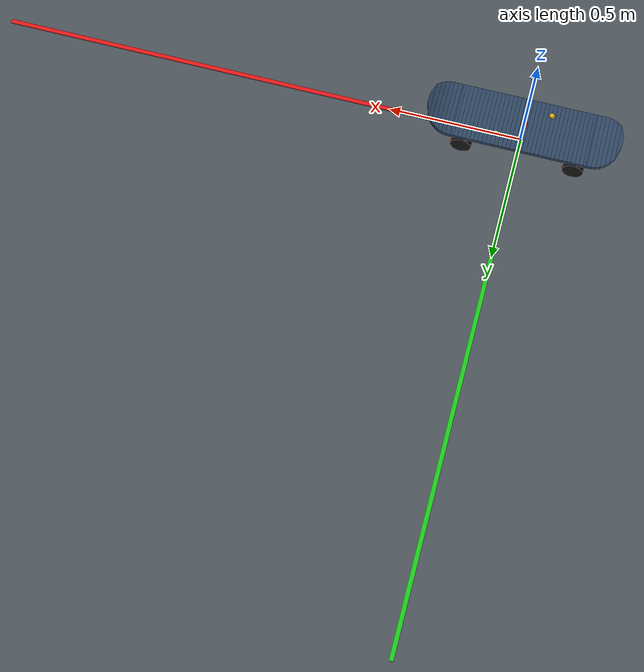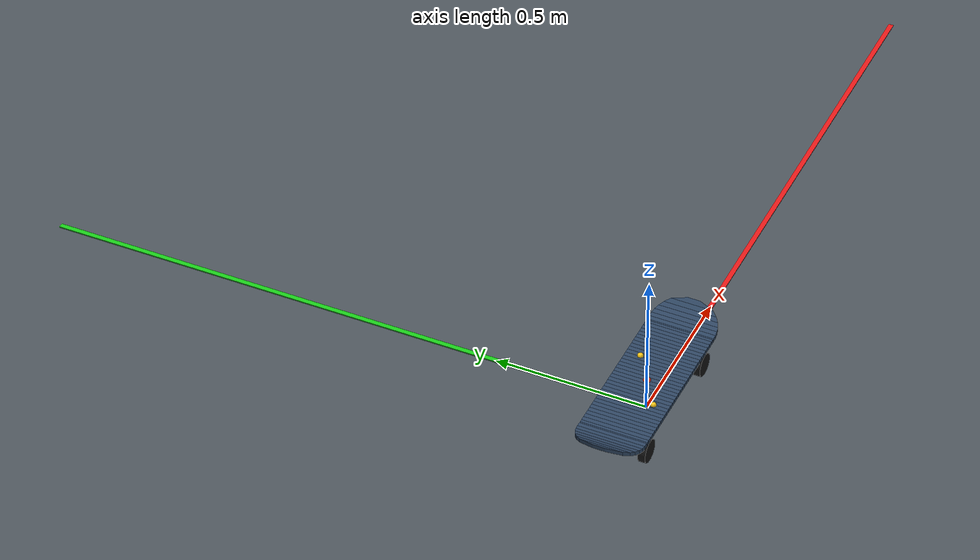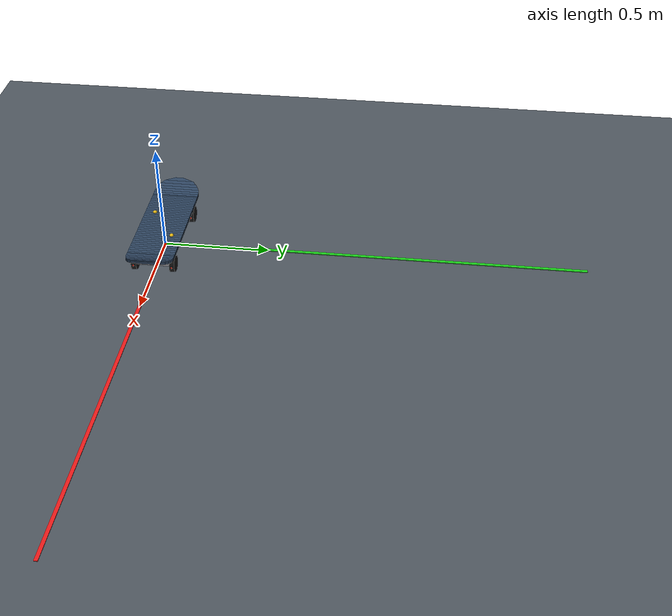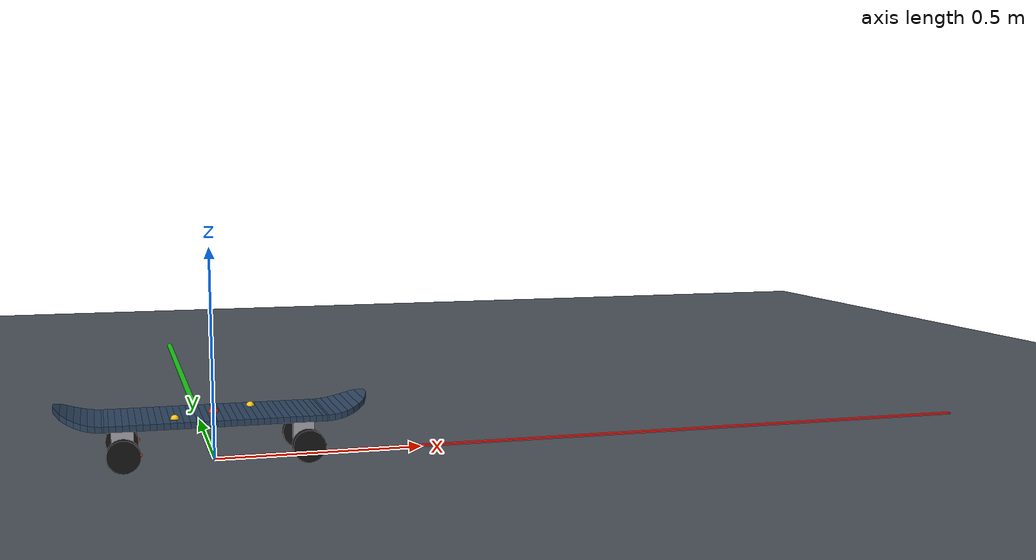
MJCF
<mujoco model="skate-sim-board-cruiser-truck">
      <compiler angle="radian" coordinate="local"/>
      <option gravity="0 0 -9.81" integrator="implicitfast" timestep=".002"/>
      <visual><headlight diffuse=".8 .8 .8" ambient=".35 .35 .35"/></visual>
      <asset>
        <mesh name="deck_strip_0" vertex="-0.36 -0.0200000023 0.028 -0.36 -0.0200000023 0.042 -0.36 0.0200000023 0.028 -0.36 0.0200000023 0.042 -0.345 -0.0697493719 0.0191053719 -0.345 -0.0697493719 0.0331053719 -0.345 0.0697493719 0.0191053719 -0.345 0.0697493719 0.0331053719"/><mesh name="deck_strip_1" vertex="-0.345 -0.0697493719 0.0191053719 -0.345 -0.0697493719 0.0331053719 -0.345 0.0697493719 0.0191053719 -0.345 0.0697493719 0.0331053719 -0.33 -0.0870820393 0.0115123967 -0.33 -0.0870820393 0.0255123967 -0.33 0.0870820393 0.0115123967 -0.33 0.0870820393 0.0255123967"/><mesh name="deck_strip_2" vertex="-0.33 -0.0870820393 0.0115123967 -0.33 -0.0870820393 0.0255123967 -0.33 0.0870820393 0.0115123967 -0.33 0.0870820393 0.0255123967 -0.315 -0.0979422863 0.00522107438 -0.315 -0.0979422863 0.0192210744 -0.315 0.0979422863 0.00522107438 -0.315 0.0979422863 0.0192210744"/><mesh name="deck_strip_3" vertex="-0.315 -0.0979422863 0.00522107438 -0.315 -0.0979422863 0.0192210744 -0.315 0.0979422863 0.00522107438 -0.315 0.0979422863 0.0192210744 -0.3 -0.104852814 0.000231404959 -0.3 -0.104852814 0.014231405 -0.3 0.104852814 0.000231404959 -0.3 0.104852814 0.014231405"/><mesh name="deck_strip_4" vertex="-0.3 -0.104852814 0.000231404959 -0.3 -0.104852814 0.014231405 -0.3 0.104852814 0.000231404959 -0.3 0.104852814 0.014231405 -0.285 -0.108741197 -0.00345661157 -0.285 -0.108741197 0.0105433884 -0.285 0.108741197 -0.00345661157 -0.285 0.108741197 0.0105433884"/><mesh name="deck_strip_5" vertex="-0.285 -0.108741197 -0.00345661157 -0.285 -0.108741197 0.0105433884 -0.285 0.108741197 -0.00345661157 -0.285 0.108741197 0.0105433884 -0.27 -0.11 -0.00584297521 -0.27 -0.11 0.00815702479 -0.27 0.11 -0.00584297521 -0.27 0.11 0.00815702479"/><mesh name="deck_strip_6" vertex="-0.27 -0.11 -0.00584297521 -0.27 -0.11 0.00815702479 -0.27 0.11 -0.00584297521 -0.27 0.11 0.00815702479 -0.255 -0.11 -0.00692768595 -0.255 -0.11 0.00707231405 -0.255 0.11 -0.00692768595 -0.255 0.11 0.00707231405"/><mesh name="deck_strip_7" vertex="-0.255 -0.11 -0.00692768595 -0.255 -0.11 0.00707231405 -0.255 0.11 -0.00692768595 -0.255 0.11 0.00707231405 -0.25 -0.11 -0.007 -0.25 -0.11 0.007 -0.25 0.11 -0.007 -0.25 0.11 0.007"/><mesh name="deck_strip_8" vertex="-0.25 -0.11 -0.007 -0.25 -0.11 0.007 -0.25 0.11 -0.007 -0.25 0.11 0.007 -0.24 -0.11 -0.007 -0.24 -0.11 0.007 -0.24 0.11 -0.007 -0.24 0.11 0.007"/><mesh name="deck_strip_9" vertex="-0.24 -0.11 -0.007 -0.24 -0.11 0.007 -0.24 0.11 -0.007 -0.24 0.11 0.007 -0.225 -0.11 -0.007 -0.225 -0.11 0.007 -0.225 0.11 -0.007 -0.225 0.11 0.007"/><mesh name="deck_strip_10" vertex="-0.225 -0.11 -0.007 -0.225 -0.11 0.007 -0.225 0.11 -0.007 -0.225 0.11 0.007 -0.21 -0.11 -0.007 -0.21 -0.11 0.007 -0.21 0.11 -0.007 -0.21 0.11 0.007"/><mesh name="deck_strip_11" vertex="-0.21 -0.11 -0.007 -0.21 -0.11 0.007 -0.21 0.11 -0.007 -0.21 0.11 0.007 -0.195 -0.11 -0.007 -0.195 -0.11 0.007 -0.195 0.11 -0.007 -0.195 0.11 0.007"/><mesh name="deck_strip_12" vertex="-0.195 -0.11 -0.007 -0.195 -0.11 0.007 -0.195 0.11 -0.007 -0.195 0.11 0.007 -0.18 -0.11 -0.007 -0.18 -0.11 0.007 -0.18 0.11 -0.007 -0.18 0.11 0.007"/><mesh name="deck_strip_13" vertex="-0.18 -0.11 -0.007 -0.18 -0.11 0.007 -0.18 0.11 -0.007 -0.18 0.11 0.007 -0.165 -0.11 -0.007 -0.165 -0.11 0.007 -0.165 0.11 -0.007 -0.165 0.11 0.007"/><mesh name="deck_strip_14" vertex="-0.165 -0.11 -0.007 -0.165 -0.11 0.007 -0.165 0.11 -0.007 -0.165 0.11 0.007 -0.15 -0.11 -0.007 -0.15 -0.11 0.007 -0.15 0.11 -0.007 -0.15 0.11 0.007"/><mesh name="deck_strip_15" vertex="-0.15 -0.11 -0.007 -0.15 -0.11 0.007 -0.15 0.11 -0.007 -0.15 0.11 0.007 -0.135 -0.11 -0.007 -0.135 -0.11 0.007 -0.135 0.11 -0.007 -0.135 0.11 0.007"/><mesh name="deck_strip_16" vertex="-0.135 -0.11 -0.007 -0.135 -0.11 0.007 -0.135 0.11 -0.007 -0.135 0.11 0.007 -0.12 -0.11 -0.007 -0.12 -0.11 0.007 -0.12 0.11 -0.007 -0.12 0.11 0.007"/><mesh name="deck_strip_17" vertex="-0.12 -0.11 -0.007 -0.12 -0.11 0.007 -0.12 0.11 -0.007 -0.12 0.11 0.007 -0.105 -0.11 -0.007 -0.105 -0.11 0.007 -0.105 0.11 -0.007 -0.105 0.11 0.007"/><mesh name="deck_strip_18" vertex="-0.105 -0.11 -0.007 -0.105 -0.11 0.007 -0.105 0.11 -0.007 -0.105 0.11 0.007 -0.09 -0.11 -0.007 -0.09 -0.11 0.007 -0.09 0.11 -0.007 -0.09 0.11 0.007"/><mesh name="deck_strip_19" vertex="-0.09 -0.11 -0.007 -0.09 -0.11 0.007 -0.09 0.11 -0.007 -0.09 0.11 0.007 -0.075 -0.11 -0.007 -0.075 -0.11 0.007 -0.075 0.11 -0.007 -0.075 0.11 0.007"/><mesh name="deck_strip_20" vertex="-0.075 -0.11 -0.007 -0.075 -0.11 0.007 -0.075 0.11 -0.007 -0.075 0.11 0.007 -0.06 -0.11 -0.007 -0.06 -0.11 0.007 -0.06 0.11 -0.007 -0.06 0.11 0.007"/><mesh name="deck_strip_21" vertex="-0.06 -0.11 -0.007 -0.06 -0.11 0.007 -0.06 0.11 -0.007 -0.06 0.11 0.007 -0.045 -0.11 -0.007 -0.045 -0.11 0.007 -0.045 0.11 -0.007 -0.045 0.11 0.007"/><mesh name="deck_strip_22" vertex="-0.045 -0.11 -0.007 -0.045 -0.11 0.007 -0.045 0.11 -0.007 -0.045 0.11 0.007 -0.03 -0.11 -0.007 -0.03 -0.11 0.007 -0.03 0.11 -0.007 -0.03 0.11 0.007"/><mesh name="deck_strip_23" vertex="-0.03 -0.11 -0.007 -0.03 -0.11 0.007 -0.03 0.11 -0.007 -0.03 0.11 0.007 -0.015 -0.11 -0.007 -0.015 -0.11 0.007 -0.015 0.11 -0.007 -0.015 0.11 0.007"/><mesh name="deck_strip_24" vertex="-0.015 -0.11 -0.007 -0.015 -0.11 0.007 -0.015 0.11 -0.007 -0.015 0.11 0.007 5.55111512e-17 -0.11 -0.007 5.55111512e-17 -0.11 0.007 5.55111512e-17 0.11 -0.007 5.55111512e-17 0.11 0.007"/><mesh name="deck_strip_25" vertex="5.55111512e-17 -0.11 -0.007 5.55111512e-17 -0.11 0.007 5.55111512e-17 0.11 -0.007 5.55111512e-17 0.11 0.007 0.015 -0.11 -0.007 0.015 -0.11 0.007 0.015 0.11 -0.007 0.015 0.11 0.007"/><mesh name="deck_strip_26" vertex="0.015 -0.11 -0.007 0.015 -0.11 0.007 0.015 0.11 -0.007 0.015 0.11 0.007 0.03 -0.11 -0.007 0.03 -0.11 0.007 0.03 0.11 -0.007 0.03 0.11 0.007"/><mesh name="deck_strip_27" vertex="0.03 -0.11 -0.007 0.03 -0.11 0.007 0.03 0.11 -0.007 0.03 0.11 0.007 0.045 -0.11 -0.007 0.045 -0.11 0.007 0.045 0.11 -0.007 0.045 0.11 0.007"/><mesh name="deck_strip_28" vertex="0.045 -0.11 -0.007 0.045 -0.11 0.007 0.045 0.11 -0.007 0.045 0.11 0.007 0.06 -0.11 -0.007 0.06 -0.11 0.007 0.06 0.11 -0.007 0.06 0.11 0.007"/><mesh name="deck_strip_29" vertex="0.06 -0.11 -0.007 0.06 -0.11 0.007 0.06 0.11 -0.007 0.06 0.11 0.007 0.075 -0.11 -0.007 0.075 -0.11 0.007 0.075 0.11 -0.007 0.075 0.11 0.007"/><mesh name="deck_strip_30" vertex="0.075 -0.11 -0.007 0.075 -0.11 0.007 0.075 0.11 -0.007 0.075 0.11 0.007 0.09 -0.11 -0.007 0.09 -0.11 0.007 0.09 0.11 -0.007 0.09 0.11 0.007"/><mesh name="deck_strip_31" vertex="0.09 -0.11 -0.007 0.09 -0.11 0.007 0.09 0.11 -0.007 0.09 0.11 0.007 0.105 -0.11 -0.007 0.105 -0.11 0.007 0.105 0.11 -0.007 0.105 0.11 0.007"/><mesh name="deck_strip_32" vertex="0.105 -0.11 -0.007 0.105 -0.11 0.007 0.105 0.11 -0.007 0.105 0.11 0.007 0.12 -0.11 -0.007 0.12 -0.11 0.007 0.12 0.11 -0.007 0.12 0.11 0.007"/><mesh name="deck_strip_33" vertex="0.12 -0.11 -0.007 0.12 -0.11 0.007 0.12 0.11 -0.007 0.12 0.11 0.007 0.135 -0.11 -0.007 0.135 -0.11 0.007 0.135 0.11 -0.007 0.135 0.11 0.007"/><mesh name="deck_strip_34" vertex="0.135 -0.11 -0.007 0.135 -0.11 0.007 0.135 0.11 -0.007 0.135 0.11 0.007 0.15 -0.11 -0.007 0.15 -0.11 0.007 0.15 0.11 -0.007 0.15 0.11 0.007"/><mesh name="deck_strip_35" vertex="0.15 -0.11 -0.007 0.15 -0.11 0.007 0.15 0.11 -0.007 0.15 0.11 0.007 0.165 -0.11 -0.007 0.165 -0.11 0.007 0.165 0.11 -0.007 0.165 0.11 0.007"/><mesh name="deck_strip_36" vertex="0.165 -0.11 -0.007 0.165 -0.11 0.007 0.165 0.11 -0.007 0.165 0.11 0.007 0.18 -0.11 -0.007 0.18 -0.11 0.007 0.18 0.11 -0.007 0.18 0.11 0.007"/><mesh name="deck_strip_37" vertex="0.18 -0.11 -0.007 0.18 -0.11 0.007 0.18 0.11 -0.007 0.18 0.11 0.007 0.195 -0.11 -0.007 0.195 -0.11 0.007 0.195 0.11 -0.007 0.195 0.11 0.007"/><mesh name="deck_strip_38" vertex="0.195 -0.11 -0.007 0.195 -0.11 0.007 0.195 0.11 -0.007 0.195 0.11 0.007 0.21 -0.11 -0.007 0.21 -0.11 0.007 0.21 0.11 -0.007 0.21 0.11 0.007"/><mesh name="deck_strip_39" vertex="0.21 -0.11 -0.007 0.21 -0.11 0.007 0.21 0.11 -0.007 0.21 0.11 0.007 0.225 -0.11 -0.007 0.225 -0.11 0.007 0.225 0.11 -0.007 0.225 0.11 0.007"/><mesh name="deck_strip_40" vertex="0.225 -0.11 -0.007 0.225 -0.11 0.007 0.225 0.11 -0.007 0.225 0.11 0.007 0.24 -0.11 -0.007 0.24 -0.11 0.007 0.24 0.11 -0.007 0.24 0.11 0.007"/><mesh name="deck_strip_41" vertex="0.24 -0.11 -0.007 0.24 -0.11 0.007 0.24 0.11 -0.007 0.24 0.11 0.007 0.25 -0.11 -0.007 0.25 -0.11 0.007 0.25 0.11 -0.007 0.25 0.11 0.007"/><mesh name="deck_strip_42" vertex="0.25 -0.11 -0.007 0.25 -0.11 0.007 0.25 0.11 -0.007 0.25 0.11 0.007 0.255 -0.11 -0.00692768595 0.255 -0.11 0.00707231405 0.255 0.11 -0.00692768595 0.255 0.11 0.00707231405"/><mesh name="deck_strip_43" vertex="0.255 -0.11 -0.00692768595 0.255 -0.11 0.00707231405 0.255 0.11 -0.00692768595 0.255 0.11 0.00707231405 0.27 -0.11 -0.00584297521 0.27 -0.11 0.00815702479 0.27 0.11 -0.00584297521 0.27 0.11 0.00815702479"/><mesh name="deck_strip_44" vertex="0.27 -0.11 -0.00584297521 0.27 -0.11 0.00815702479 0.27 0.11 -0.00584297521 0.27 0.11 0.00815702479 0.285 -0.108741197 -0.00345661157 0.285 -0.108741197 0.0105433884 0.285 0.108741197 -0.00345661157 0.285 0.108741197 0.0105433884"/><mesh name="deck_strip_45" vertex="0.285 -0.108741197 -0.00345661157 0.285 -0.108741197 0.0105433884 0.285 0.108741197 -0.00345661157 0.285 0.108741197 0.0105433884 0.3 -0.104852814 0.000231404959 0.3 -0.104852814 0.014231405 0.3 0.104852814 0.000231404959 0.3 0.104852814 0.014231405"/><mesh name="deck_strip_46" vertex="0.3 -0.104852814 0.000231404959 0.3 -0.104852814 0.014231405 0.3 0.104852814 0.000231404959 0.3 0.104852814 0.014231405 0.315 -0.0979422863 0.00522107438 0.315 -0.0979422863 0.0192210744 0.315 0.0979422863 0.00522107438 0.315 0.0979422863 0.0192210744"/><mesh name="deck_strip_47" vertex="0.315 -0.0979422863 0.00522107438 0.315 -0.0979422863 0.0192210744 0.315 0.0979422863 0.00522107438 0.315 0.0979422863 0.0192210744 0.33 -0.0870820393 0.0115123967 0.33 -0.0870820393 0.0255123967 0.33 0.0870820393 0.0115123967 0.33 0.0870820393 0.0255123967"/><mesh name="deck_strip_48" vertex="0.33 -0.0870820393 0.0115123967 0.33 -0.0870820393 0.0255123967 0.33 0.0870820393 0.0115123967 0.33 0.0870820393 0.0255123967 0.345 -0.0697493719 0.0191053719 0.345 -0.0697493719 0.0331053719 0.345 0.0697493719 0.0191053719 0.345 0.0697493719 0.0331053719"/><mesh name="deck_strip_49" vertex="0.345 -0.0697493719 0.0191053719 0.345 -0.0697493719 0.0331053719 0.345 0.0697493719 0.0191053719 0.345 0.0697493719 0.0331053719 0.36 -0.0200000023 0.028 0.36 -0.0200000023 0.042 0.36 0.0200000023 0.028 0.36 0.0200000023 0.042"/>
        <texture name="grid" type="2d" builtin="checker" width="256" height="256" rgb1=".2 .23 .26" rgb2=".4 .43 .46"/>
        <material name="floor" texture="grid" texrepeat="10 10" texuniform="true"/>
        <mesh name="ramp" vertex="-.35 -.55 0 .35 -.55 0 -.35 .55 0 .35 .55 0 .35 -.55 .24 .35 .55 .24"/>
      </asset>
      <worldbody>
        <light name="key" pos="0 -2 4" directional="true"/>
        <geom name="ground" type="plane" size="5 5 .1" material="floor"/>
        <geom name="axis_x" type="box" pos="1 0 .002" size="1 .008 .002" rgba=".9 .1 .1 1" contype="0" conaffinity="0"/>
        <geom name="axis_y" type="box" pos="0 1 .002" size=".008 1 .002" rgba=".1 .8 .1 1" contype="0" conaffinity="0"/>

        <body name="deck" pos="0 0 0.105000" euler="0 0 0">
          <freejoint name="deck_free"/>
          <geom name="deck_collision" type="box" size="0.250000 0.110000 0.007000" mass="0" contype="0" conaffinity="0" rgba="0 0 0 0" group="5"/>
          <geom name="deck_strip_0" type="mesh" mesh="deck_strip_0" mass="0.0116053637867" rgba=".18 .27 .38 1"/><geom name="deck_strip_1" type="mesh" mesh="deck_strip_1" mass="0.0202796464871" rgba=".18 .27 .38 1"/><geom name="deck_strip_2" type="mesh" mesh="deck_strip_2" mass="0.0239252321188" rgba=".18 .27 .38 1"/><geom name="deck_strip_3" type="mesh" mesh="deck_strip_3" mass="0.0262231456571" rgba=".18 .27 .38 1"/><geom name="deck_strip_4" type="mesh" mesh="deck_strip_4" mass="0.0276195373865" rgba=".18 .27 .38 1"/><geom name="deck_strip_5" type="mesh" mesh="deck_strip_5" mass="0.028285112713" rgba=".18 .27 .38 1"/><geom name="deck_strip_6" type="mesh" mesh="deck_strip_6" mass="0.0284478867695" rgba=".18 .27 .38 1"/><geom name="deck_strip_7" type="mesh" mesh="deck_strip_7" mass="0.00948262892316" rgba=".18 .27 .38 1"/><geom name="deck_strip_8" type="mesh" mesh="deck_strip_8" mass="0.0189652578463" rgba=".18 .27 .38 1"/><geom name="deck_strip_9" type="mesh" mesh="deck_strip_9" mass="0.0284478867695" rgba=".18 .27 .38 1"/><geom name="deck_strip_10" type="mesh" mesh="deck_strip_10" mass="0.0284478867695" rgba=".18 .27 .38 1"/><geom name="deck_strip_11" type="mesh" mesh="deck_strip_11" mass="0.0284478867695" rgba=".18 .27 .38 1"/><geom name="deck_strip_12" type="mesh" mesh="deck_strip_12" mass="0.0284478867695" rgba=".18 .27 .38 1"/><geom name="deck_strip_13" type="mesh" mesh="deck_strip_13" mass="0.0284478867695" rgba=".18 .27 .38 1"/><geom name="deck_strip_14" type="mesh" mesh="deck_strip_14" mass="0.0284478867695" rgba=".18 .27 .38 1"/><geom name="deck_strip_15" type="mesh" mesh="deck_strip_15" mass="0.0284478867695" rgba=".18 .27 .38 1"/><geom name="deck_strip_16" type="mesh" mesh="deck_strip_16" mass="0.0284478867695" rgba=".18 .27 .38 1"/><geom name="deck_strip_17" type="mesh" mesh="deck_strip_17" mass="0.0284478867695" rgba=".18 .27 .38 1"/><geom name="deck_strip_18" type="mesh" mesh="deck_strip_18" mass="0.0284478867695" rgba=".18 .27 .38 1"/><geom name="deck_strip_19" type="mesh" mesh="deck_strip_19" mass="0.0284478867695" rgba=".18 .27 .38 1"/><geom name="deck_strip_20" type="mesh" mesh="deck_strip_20" mass="0.0284478867695" rgba=".18 .27 .38 1"/><geom name="deck_strip_21" type="mesh" mesh="deck_strip_21" mass="0.0284478867695" rgba=".18 .27 .38 1"/><geom name="deck_strip_22" type="mesh" mesh="deck_strip_22" mass="0.0284478867695" rgba=".18 .27 .38 1"/><geom name="deck_strip_23" type="mesh" mesh="deck_strip_23" mass="0.0284478867695" rgba=".18 .27 .38 1"/><geom name="deck_strip_24" type="mesh" mesh="deck_strip_24" mass="0.0284478867695" rgba=".18 .27 .38 1"/><geom name="deck_strip_25" type="mesh" mesh="deck_strip_25" mass="0.0284478867695" rgba=".18 .27 .38 1"/><geom name="deck_strip_26" type="mesh" mesh="deck_strip_26" mass="0.0284478867695" rgba=".18 .27 .38 1"/><geom name="deck_strip_27" type="mesh" mesh="deck_strip_27" mass="0.0284478867695" rgba=".18 .27 .38 1"/><geom name="deck_strip_28" type="mesh" mesh="deck_strip_28" mass="0.0284478867695" rgba=".18 .27 .38 1"/><geom name="deck_strip_29" type="mesh" mesh="deck_strip_29" mass="0.0284478867695" rgba=".18 .27 .38 1"/><geom name="deck_strip_30" type="mesh" mesh="deck_strip_30" mass="0.0284478867695" rgba=".18 .27 .38 1"/><geom name="deck_strip_31" type="mesh" mesh="deck_strip_31" mass="0.0284478867695" rgba=".18 .27 .38 1"/><geom name="deck_strip_32" type="mesh" mesh="deck_strip_32" mass="0.0284478867695" rgba=".18 .27 .38 1"/><geom name="deck_strip_33" type="mesh" mesh="deck_strip_33" mass="0.0284478867695" rgba=".18 .27 .38 1"/><geom name="deck_strip_34" type="mesh" mesh="deck_strip_34" mass="0.0284478867695" rgba=".18 .27 .38 1"/><geom name="deck_strip_35" type="mesh" mesh="deck_strip_35" mass="0.0284478867695" rgba=".18 .27 .38 1"/><geom name="deck_strip_36" type="mesh" mesh="deck_strip_36" mass="0.0284478867695" rgba=".18 .27 .38 1"/><geom name="deck_strip_37" type="mesh" mesh="deck_strip_37" mass="0.0284478867695" rgba=".18 .27 .38 1"/><geom name="deck_strip_38" type="mesh" mesh="deck_strip_38" mass="0.0284478867695" rgba=".18 .27 .38 1"/><geom name="deck_strip_39" type="mesh" mesh="deck_strip_39" mass="0.0284478867695" rgba=".18 .27 .38 1"/><geom name="deck_strip_40" type="mesh" mesh="deck_strip_40" mass="0.0284478867695" rgba=".18 .27 .38 1"/><geom name="deck_strip_41" type="mesh" mesh="deck_strip_41" mass="0.0189652578463" rgba=".18 .27 .38 1"/><geom name="deck_strip_42" type="mesh" mesh="deck_strip_42" mass="0.00948262892316" rgba=".18 .27 .38 1"/><geom name="deck_strip_43" type="mesh" mesh="deck_strip_43" mass="0.0284478867695" rgba=".18 .27 .38 1"/><geom name="deck_strip_44" type="mesh" mesh="deck_strip_44" mass="0.028285112713" rgba=".18 .27 .38 1"/><geom name="deck_strip_45" type="mesh" mesh="deck_strip_45" mass="0.0276195373865" rgba=".18 .27 .38 1"/><geom name="deck_strip_46" type="mesh" mesh="deck_strip_46" mass="0.0262231456571" rgba=".18 .27 .38 1"/><geom name="deck_strip_47" type="mesh" mesh="deck_strip_47" mass="0.0239252321188" rgba=".18 .27 .38 1"/><geom name="deck_strip_48" type="mesh" mesh="deck_strip_48" mass="0.0202796464871" rgba=".18 .27 .38 1"/><geom name="deck_strip_49" type="mesh" mesh="deck_strip_49" mass="0.0116053637867" rgba=".18 .27 .38 1"/>
          <site name="deck_top" pos="0 0 0.007000" size=".012" rgba="1 .2 .1 1"/>
          <site name="left_foot_anchor" pos="0.092400 0.061600 0.007000" size=".01" rgba="1 .8 .1 1"/>
          <site name="right_foot_anchor" pos="-0.092400 -0.061600 0.007000" size=".01" rgba="1 .8 .1 1"/>
          <body name="front_truck" pos="0.210000 0 -0.007000">
          <joint name="front_truck_tilt" type="hinge" axis="0.7071067811865476 0 0.7071067811865475" range="-0.35 0.35" stiffness="2.2" damping="0.09"/>
          <geom name="front_truck_collision" type="box" pos="0 0 -.030" size=".025 .012 .030" mass="0.144000" rgba=".65 .65 .68 1"/>
          <geom name="front_axle_collision" type="box" pos="0 0 -.060" size=".012 0.078000 .010" mass="0.096000" rgba=".65 .65 .68 1"/>
          <site name="front_truck_pivot" size=".005" rgba="1 .3 1 1"/>
           <site name="front_truck_axis" type="capsule" fromto="0 0 0 0.06363961030678927 0 0.06363961030678927" size=".002" rgba="1 .3 1 1" group="3"/>
          <body name="front_left" pos="0 0.090000 -0.060000">
      <joint name="front_left_spin" type="hinge" axis="0 1 0" damping=".02"/>
      <geom name="front_left_collision" type="cylinder" fromto="0 -0.012000 0 0 0.012000 0" size="0.038000" mass="0.100000" rgba=".08 .08 .08 1"/>
      <site name="front_left_axle" pos="0 0 0" size=".006" rgba="1 1 0 1"/>
      <site name="front_left_axis" type="capsule" fromto="0 -.04 0 0 .04 0" size=".002" rgba="1 1 0 1" group="3"/>
      <site name="front_left_marker" pos="0.038000 0 0" size=".004" rgba="1 .2 .1 1"/>
    </body><body name="front_right" pos="0 -0.090000 -0.060000">
      <joint name="front_right_spin" type="hinge" axis="0 1 0" damping=".02"/>
      <geom name="front_right_collision" type="cylinder" fromto="0 -0.012000 0 0 0.012000 0" size="0.038000" mass="0.100000" rgba=".08 .08 .08 1"/>
      <site name="front_right_axle" pos="0 0 0" size=".006" rgba="1 1 0 1"/>
      <site name="front_right_axis" type="capsule" fromto="0 -.04 0 0 .04 0" size=".002" rgba="1 1 0 1" group="3"/>
      <site name="front_right_marker" pos="0.038000 0 0" size=".004" rgba="1 .2 .1 1"/>
    </body>
        </body><body name="rear_truck" pos="-0.210000 0 -0.007000">
          <joint name="rear_truck_tilt" type="hinge" axis="0.7071067811865476 0 -0.7071067811865475" range="-0.35 0.35" stiffness="2.2" damping="0.09"/>
          <geom name="rear_truck_collision" type="box" pos="0 0 -.030" size=".025 .012 .030" mass="0.144000" rgba=".65 .65 .68 1"/>
          <geom name="rear_axle_collision" type="box" pos="0 0 -.060" size=".012 0.078000 .010" mass="0.096000" rgba=".65 .65 .68 1"/>
          <site name="rear_truck_pivot" size=".005" rgba="1 .3 1 1"/>
           <site name="rear_truck_axis" type="capsule" fromto="0 0 0 0.06363961030678927 0 -0.06363961030678927" size=".002" rgba="1 .3 1 1" group="3"/>
          <body name="rear_left" pos="0 0.090000 -0.060000">
      <joint name="rear_left_spin" type="hinge" axis="0 1 0" damping=".02"/>
      <geom name="rear_left_collision" type="cylinder" fromto="0 -0.012000 0 0 0.012000 0" size="0.038000" mass="0.100000" rgba=".08 .08 .08 1"/>
      <site name="rear_left_axle" pos="0 0 0" size=".006" rgba="1 1 0 1"/>
      <site name="rear_left_axis" type="capsule" fromto="0 -.04 0 0 .04 0" size=".002" rgba="1 1 0 1" group="3"/>
      <site name="rear_left_marker" pos="0.038000 0 0" size=".004" rgba="1 .2 .1 1"/>
    </body><body name="rear_right" pos="0 -0.090000 -0.060000">
      <joint name="rear_right_spin" type="hinge" axis="0 1 0" damping=".02"/>
      <geom name="rear_right_collision" type="cylinder" fromto="0 -0.012000 0 0 0.012000 0" size="0.038000" mass="0.100000" rgba=".08 .08 .08 1"/>
      <site name="rear_right_axle" pos="0 0 0" size=".006" rgba="1 1 0 1"/>
      <site name="rear_right_axis" type="capsule" fromto="0 -.04 0 0 .04 0" size=".002" rgba="1 1 0 1" group="3"/>
      <site name="rear_right_marker" pos="0.038000 0 0" size=".004" rgba="1 .2 .1 1"/>
    </body>
        </body>
        </body>
      </worldbody>
    </mujoco>
